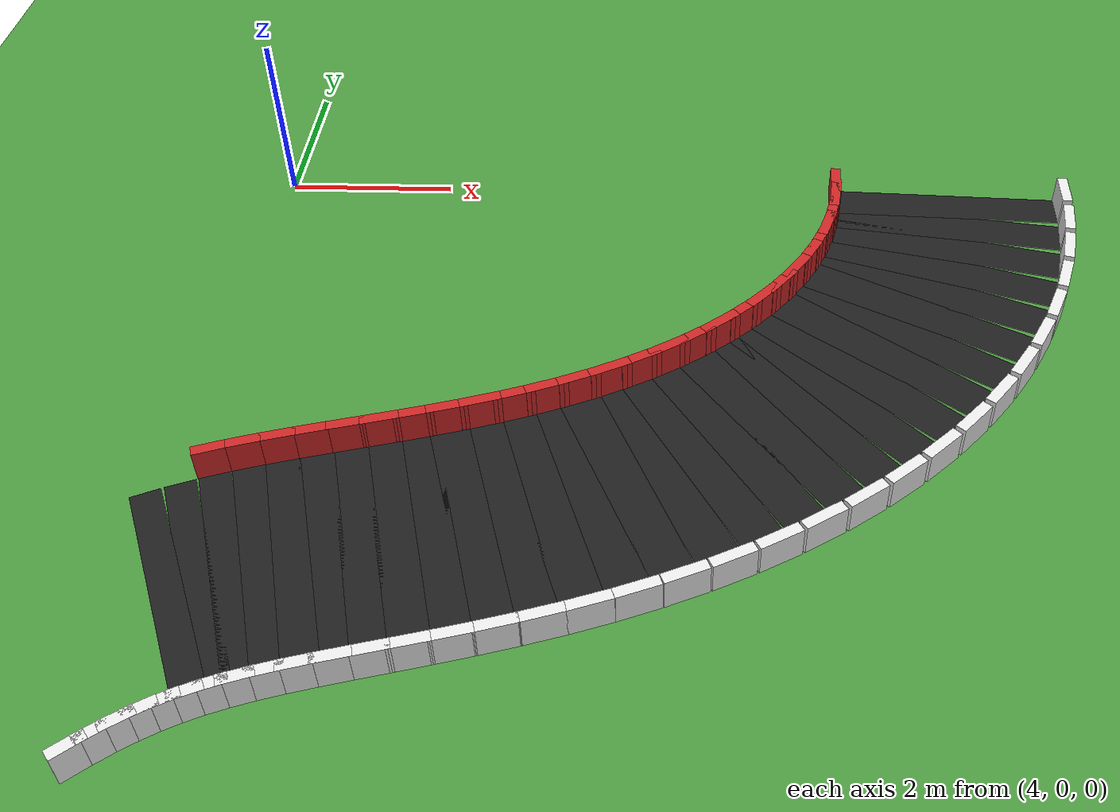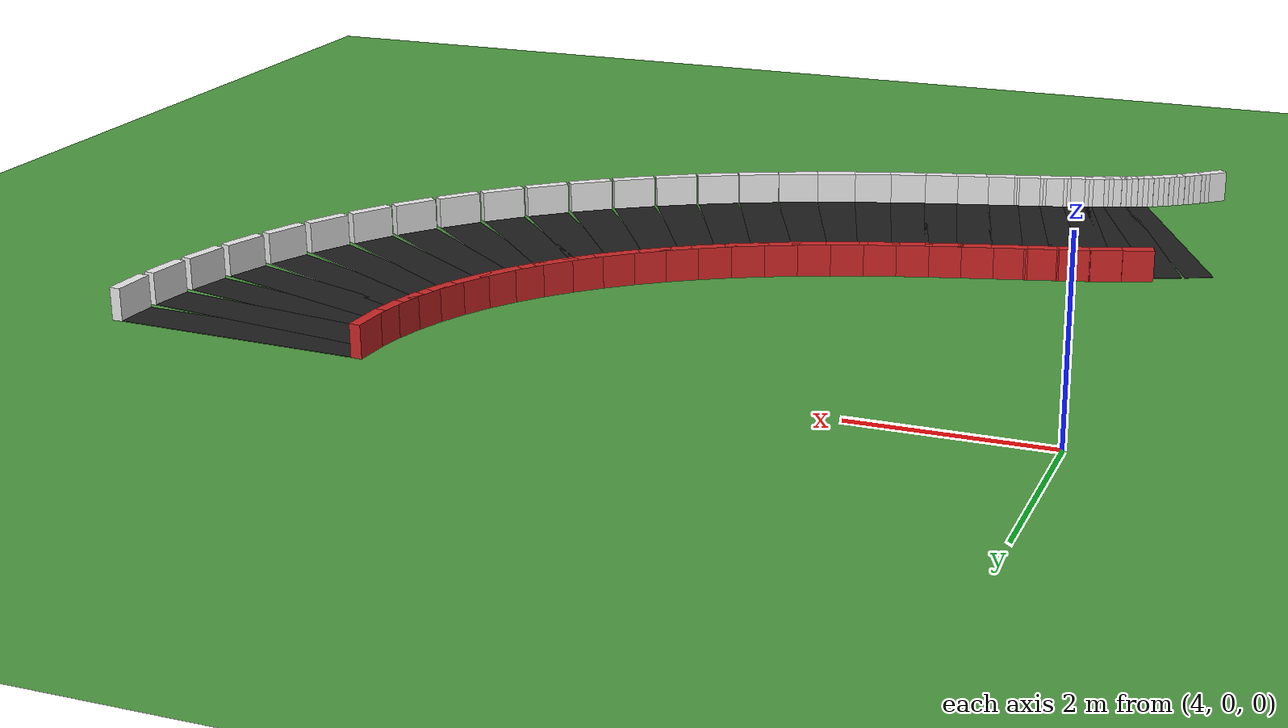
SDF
<sdf version="1.7">
 <world name="rl_track">
  <include><uri>model://sun</uri></include>
  <model name="ground">
   <static>true</static>
   <link name="link">
    <collision name="collision">
     <geometry><plane><normal>0 0 1</normal><size>40 40</size></plane></geometry>
    </collision>
    <visual name="visual">
     <geometry><plane><normal>0 0 1</normal><size>40 40</size></plane></geometry>
     <material>
      <script><uri>file://media/materials/scripts/gazebo.material</uri><name>Gazebo/Grass</name></script>
     </material>
    </visual>
   </link>
  </model>
  <model name="track">
   <static>true</static>
   <link name="inner_wall_146">
    <pose>3.983343 -8.303169 0.175000 0 0 0.706217119</pose>
    <collision name="collision">
     <geometry><box><size>0.337451 0.120000 0.350000</size></box></geometry>
     <surface><contact><ode><kp>1000000</kp><kd>10</kd></ode></contact></surface>
    </collision>
    <visual name="visual">
     <geometry><box><size>0.337451 0.120000 0.350000</size></box></geometry>
     <material>
      <script><uri>file://media/materials/scripts/gazebo.material</uri><name>Gazebo/White</name></script>
     </material>
    </visual>
   </link>
   <link name="inner_wall_147">
    <pose>4.154080 -8.163839 0.175000 0 0 0.661806062</pose>
    <collision name="collision">
     <geometry><box><size>0.328662 0.120000 0.350000</size></box></geometry>
     <surface><contact><ode><kp>1000000</kp><kd>10</kd></ode></contact></surface>
    </collision>
    <visual name="visual">
     <geometry><box><size>0.328662 0.120000 0.350000</size></box></geometry>
     <material>
      <script><uri>file://media/materials/scripts/gazebo.material</uri><name>Gazebo/White</name></script>
     </material>
    </visual>
   </link>
   <link name="inner_wall_148">
    <pose>4.316770 -8.043657 0.175000 0 0 0.609877483</pose>
    <collision name="collision">
     <geometry><box><size>0.322479 0.120000 0.350000</size></box></geometry>
     <surface><contact><ode><kp>1000000</kp><kd>10</kd></ode></contact></surface>
    </collision>
    <visual name="visual">
     <geometry><box><size>0.322479 0.120000 0.350000</size></box></geometry>
     <material>
      <script><uri>file://media/materials/scripts/gazebo.material</uri><name>Gazebo/White</name></script>
     </material>
    </visual>
   </link>
   <link name="inner_wall_149">
    <pose>4.475949 -7.938992 0.175000 0 0 0.552945236</pose>
    <collision name="collision">
     <geometry><box><size>0.319282 0.120000 0.350000</size></box></geometry>
     <surface><contact><ode><kp>1000000</kp><kd>10</kd></ode></contact></surface>
    </collision>
    <visual name="visual">
     <geometry><box><size>0.319282 0.120000 0.350000</size></box></geometry>
     <material>
      <script><uri>file://media/materials/scripts/gazebo.material</uri><name>Gazebo/White</name></script>
     </material>
    </visual>
   </link>
   <link name="inner_wall_150">
    <pose>4.637394 -7.845782 0.175000 0 0 0.494252315</pose>
    <collision name="collision">
     <geometry><box><size>0.319282 0.120000 0.350000</size></box></geometry>
     <surface><contact><ode><kp>1000000</kp><kd>10</kd></ode></contact></surface>
    </collision>
    <visual name="visual">
     <geometry><box><size>0.319282 0.120000 0.350000</size></box></geometry>
     <material>
      <script><uri>file://media/materials/scripts/gazebo.material</uri><name>Gazebo/White</name></script>
     </material>
    </visual>
   </link>
   <link name="road_151">
    <pose>4.210473 -6.482956 0.003000 0 0 0.437320068</pose>
    <visual name="visual">
     <geometry><box><size>0.312479 2.700000 0.006000</size></box></geometry>
     <material>
      <script><uri>file://media/materials/scripts/gazebo.material</uri><name>Gazebo/Black</name></script>
     </material>
    </visual>
   </link>
   <link name="inner_wall_151">
    <pose>4.807627 -7.760261 0.175000 0 0 0.437320068</pose>
    <collision name="collision">
     <geometry><box><size>0.322479 0.120000 0.350000</size></box></geometry>
     <surface><contact><ode><kp>1000000</kp><kd>10</kd></ode></contact></surface>
    </collision>
    <visual name="visual">
     <geometry><box><size>0.322479 0.120000 0.350000</size></box></geometry>
     <material>
      <script><uri>file://media/materials/scripts/gazebo.material</uri><name>Gazebo/White</name></script>
     </material>
    </visual>
   </link>
   <link name="road_152">
    <pose>4.463002 -6.372880 0.003000 0 0 0.385391489</pose>
    <visual name="visual">
     <geometry><box><size>0.318662 2.700000 0.006000</size></box></geometry>
     <material>
      <script><uri>file://media/materials/scripts/gazebo.material</uri><name>Gazebo/Black</name></script>
     </material>
    </visual>
   </link>
   <link name="inner_wall_152">
    <pose>4.993052 -7.679458 0.175000 0 0 0.385391489</pose>
    <collision name="collision">
     <geometry><box><size>0.328662 0.120000 0.350000</size></box></geometry>
     <surface><contact><ode><kp>1000000</kp><kd>10</kd></ode></contact></surface>
    </collision>
    <visual name="visual">
     <geometry><box><size>0.328662 0.120000 0.350000</size></box></geometry>
     <material>
      <script><uri>file://media/materials/scripts/gazebo.material</uri><name>Gazebo/White</name></script>
     </material>
    </visual>
   </link>
   <link name="road_153">
    <pose>4.727564 -6.272439 0.003000 0 0 0.340980432</pose>
    <visual name="visual">
     <geometry><box><size>0.327451 2.700000 0.006000</size></box></geometry>
     <material>
      <script><uri>file://media/materials/scripts/gazebo.material</uri><name>Gazebo/Black</name></script>
     </material>
    </visual>
   </link>
   <link name="inner_wall_153">
    <pose>5.199084 -7.601261 0.175000 0 0 0.340980432</pose>
    <collision name="collision">
     <geometry><box><size>0.337451 0.120000 0.350000</size></box></geometry>
     <surface><contact><ode><kp>1000000</kp><kd>10</kd></ode></contact></surface>
    </collision>
    <visual name="visual">
     <geometry><box><size>0.337451 0.120000 0.350000</size></box></geometry>
     <material>
      <script><uri>file://media/materials/scripts/gazebo.material</uri><name>Gazebo/White</name></script>
     </material>
    </visual>
   </link>
   <link name="outer_wall_153">
    <pose>4.256044 -4.943616 0.175000 0 0 0.340980432</pose>
    <collision name="collision">
     <geometry><box><size>0.337451 0.120000 0.350000</size></box></geometry>
     <surface><contact><ode><kp>1000000</kp><kd>10</kd></ode></contact></surface>
    </collision>
    <visual name="visual">
     <geometry><box><size>0.337451 0.120000 0.350000</size></box></geometry>
     <material>
      <script><uri>file://media/materials/scripts/gazebo.material</uri><name>Gazebo/Red</name></script>
     </material>
    </visual>
   </link>
   <link name="road_154">
    <pose>5.005275 -6.179484 0.003000 0 0 0.305669813</pose>
    <visual name="visual">
     <geometry><box><size>0.338349 2.700000 0.006000</size></box></geometry>
     <material>
      <script><uri>file://media/materials/scripts/gazebo.material</uri><name>Gazebo/Black</name></script>
     </material>
    </visual>
   </link>
   <link name="inner_wall_154">
    <pose>5.429589 -7.524124 0.175000 0 0 0.305669813</pose>
    <collision name="collision">
     <geometry><box><size>0.348349 0.120000 0.350000</size></box></geometry>
     <surface><contact><ode><kp>1000000</kp><kd>10</kd></ode></contact></surface>
    </collision>
    <visual name="visual">
     <geometry><box><size>0.348349 0.120000 0.350000</size></box></geometry>
     <material>
      <script><uri>file://media/materials/scripts/gazebo.material</uri><name>Gazebo/White</name></script>
     </material>
    </visual>
   </link>
   <link name="outer_wall_154">
    <pose>4.580960 -4.834843 0.175000 0 0 0.305669813</pose>
    <collision name="collision">
     <geometry><box><size>0.348349 0.120000 0.350000</size></box></geometry>
     <surface><contact><ode><kp>1000000</kp><kd>10</kd></ode></contact></surface>
    </collision>
    <visual name="visual">
     <geometry><box><size>0.348349 0.120000 0.350000</size></box></geometry>
     <material>
      <script><uri>file://media/materials/scripts/gazebo.material</uri><name>Gazebo/Red</name></script>
     </material>
    </visual>
   </link>
   <link name="road_155">
    <pose>5.296881 -6.091621 0.003000 0 0 0.280160323</pose>
    <visual name="visual">
     <geometry><box><size>0.350813 2.700000 0.006000</size></box></geometry>
     <material>
      <script><uri>file://media/materials/scripts/gazebo.material</uri><name>Gazebo/Black</name></script>
     </material>
    </visual>
   </link>
   <link name="inner_wall_155">
    <pose>5.686760 -7.446647 0.175000 0 0 0.280160323</pose>
    <collision name="collision">
     <geometry><box><size>0.360813 0.120000 0.350000</size></box></geometry>
     <surface><contact><ode><kp>1000000</kp><kd>10</kd></ode></contact></surface>
    </collision>
    <visual name="visual">
     <geometry><box><size>0.360813 0.120000 0.350000</size></box></geometry>
     <material>
      <script><uri>file://media/materials/scripts/gazebo.material</uri><name>Gazebo/White</name></script>
     </material>
    </visual>
   </link>
   <link name="outer_wall_155">
    <pose>4.907003 -4.736595 0.175000 0 0 0.280160323</pose>
    <collision name="collision">
     <geometry><box><size>0.360813 0.120000 0.350000</size></box></geometry>
     <surface><contact><ode><kp>1000000</kp><kd>10</kd></ode></contact></surface>
    </collision>
    <visual name="visual">
     <geometry><box><size>0.360813 0.120000 0.350000</size></box></geometry>
     <material>
      <script><uri>file://media/materials/scripts/gazebo.material</uri><name>Gazebo/Red</name></script>
     </material>
    </visual>
   </link>
   <link name="road_156">
    <pose>5.602740 -6.006264 0.003000 0 0 0.264471185</pose>
    <visual name="visual">
     <geometry><box><size>0.364298 2.700000 0.006000</size></box></geometry>
     <material>
      <script><uri>file://media/materials/scripts/gazebo.material</uri><name>Gazebo/Black</name></script>
     </material>
    </visual>
   </link>
   <link name="inner_wall_156">
    <pose>5.971312 -7.367240 0.175000 0 0 0.264471185</pose>
    <collision name="collision">
     <geometry><box><size>0.374298 0.120000 0.350000</size></box></geometry>
     <surface><contact><ode><kp>1000000</kp><kd>10</kd></ode></contact></surface>
    </collision>
    <visual name="visual">
     <geometry><box><size>0.374298 0.120000 0.350000</size></box></geometry>
     <material>
      <script><uri>file://media/materials/scripts/gazebo.material</uri><name>Gazebo/White</name></script>
     </material>
    </visual>
   </link>
   <link name="outer_wall_156">
    <pose>5.234167 -4.645289 0.175000 0 0 0.264471185</pose>
    <collision name="collision">
     <geometry><box><size>0.374298 0.120000 0.350000</size></box></geometry>
     <surface><contact><ode><kp>1000000</kp><kd>10</kd></ode></contact></surface>
    </collision>
    <visual name="visual">
     <geometry><box><size>0.374298 0.120000 0.350000</size></box></geometry>
     <material>
      <script><uri>file://media/materials/scripts/gazebo.material</uri><name>Gazebo/Red</name></script>
     </material>
    </visual>
   </link>
   <link name="road_157">
    <pose>5.922792 -5.920691 0.003000 0 0 0.258181025</pose>
    <visual name="visual">
     <geometry><box><size>0.378296 2.700000 0.006000</size></box></geometry>
     <material>
      <script><uri>file://media/materials/scripts/gazebo.material</uri><name>Gazebo/Black</name></script>
     </material>
    </visual>
   </link>
   <link name="inner_wall_157">
    <pose>6.282797 -7.283958 0.175000 0 0 0.258181025</pose>
    <collision name="collision">
     <geometry><box><size>0.388296 0.120000 0.350000</size></box></geometry>
     <surface><contact><ode><kp>1000000</kp><kd>10</kd></ode></contact></surface>
    </collision>
    <visual name="visual">
     <geometry><box><size>0.388296 0.120000 0.350000</size></box></geometry>
     <material>
      <script><uri>file://media/materials/scripts/gazebo.material</uri><name>Gazebo/White</name></script>
     </material>
    </visual>
   </link>
   <link name="outer_wall_157">
    <pose>5.562788 -4.557424 0.175000 0 0 0.258181025</pose>
    <collision name="collision">
     <geometry><box><size>0.388296 0.120000 0.350000</size></box></geometry>
     <surface><contact><ode><kp>1000000</kp><kd>10</kd></ode></contact></surface>
    </collision>
    <visual name="visual">
     <geometry><box><size>0.388296 0.120000 0.350000</size></box></geometry>
     <material>
      <script><uri>file://media/materials/scripts/gazebo.material</uri><name>Gazebo/Red</name></script>
     </material>
    </visual>
   </link>
   <link name="road_158">
    <pose>6.256560 -5.832104 0.003000 0 0 0.260636785</pose>
    <visual name="visual">
     <geometry><box><size>0.392353 2.700000 0.006000</size></box></geometry>
     <material>
      <script><uri>file://media/materials/scripts/gazebo.material</uri><name>Gazebo/Black</name></script>
     </material>
    </visual>
   </link>
   <link name="inner_wall_158">
    <pose>6.619911 -7.194483 0.175000 0 0 0.260636785</pose>
    <collision name="collision">
     <geometry><box><size>0.402353 0.120000 0.350000</size></box></geometry>
     <surface><contact><ode><kp>1000000</kp><kd>10</kd></ode></contact></surface>
    </collision>
    <visual name="visual">
     <geometry><box><size>0.402353 0.120000 0.350000</size></box></geometry>
     <material>
      <script><uri>file://media/materials/scripts/gazebo.material</uri><name>Gazebo/White</name></script>
     </material>
    </visual>
   </link>
   <link name="outer_wall_158">
    <pose>5.893209 -4.469725 0.175000 0 0 0.260636785</pose>
    <collision name="collision">
     <geometry><box><size>0.402353 0.120000 0.350000</size></box></geometry>
     <surface><contact><ode><kp>1000000</kp><kd>10</kd></ode></contact></surface>
    </collision>
    <visual name="visual">
     <geometry><box><size>0.402353 0.120000 0.350000</size></box></geometry>
     <material>
      <script><uri>file://media/materials/scripts/gazebo.material</uri><name>Gazebo/Red</name></script>
     </material>
    </visual>
   </link>
   <link name="road_159">
    <pose>6.603140 -5.737687 0.003000 0 0 0.271104231</pose>
    <visual name="visual">
     <geometry><box><size>0.406078 2.700000 0.006000</size></box></geometry>
     <material>
      <script><uri>file://media/materials/scripts/gazebo.material</uri><name>Gazebo/Black</name></script>
     </material>
    </visual>
   </link>
   <link name="inner_wall_159">
    <pose>6.980731 -7.096188 0.175000 0 0 0.271104231</pose>
    <collision name="collision">
     <geometry><box><size>0.416078 0.120000 0.350000</size></box></geometry>
     <surface><contact><ode><kp>1000000</kp><kd>10</kd></ode></contact></surface>
    </collision>
    <visual name="visual">
     <geometry><box><size>0.416078 0.120000 0.350000</size></box></geometry>
     <material>
      <script><uri>file://media/materials/scripts/gazebo.material</uri><name>Gazebo/White</name></script>
     </material>
    </visual>
   </link>
   <link name="outer_wall_159">
    <pose>6.225548 -4.379186 0.175000 0 0 0.271104231</pose>
    <collision name="collision">
     <geometry><box><size>0.416078 0.120000 0.350000</size></box></geometry>
     <surface><contact><ode><kp>1000000</kp><kd>10</kd></ode></contact></surface>
    </collision>
    <visual name="visual">
     <geometry><box><size>0.416078 0.120000 0.350000</size></box></geometry>
     <material>
      <script><uri>file://media/materials/scripts/gazebo.material</uri><name>Gazebo/Red</name></script>
     </material>
    </visual>
   </link>
   <link name="road_160">
    <pose>6.961211 -5.634669 0.003000 0 0 0.288862243</pose>
    <visual name="visual">
     <geometry><box><size>0.419143 2.700000 0.006000</size></box></geometry>
     <material>
      <script><uri>file://media/materials/scripts/gazebo.material</uri><name>Gazebo/Black</name></script>
     </material>
    </visual>
   </link>
   <link name="inner_wall_160">
    <pose>7.362866 -6.986250 0.175000 0 0 0.288862243</pose>
    <collision name="collision">
     <geometry><box><size>0.429143 0.120000 0.350000</size></box></geometry>
     <surface><contact><ode><kp>1000000</kp><kd>10</kd></ode></contact></surface>
    </collision>
    <visual name="visual">
     <geometry><box><size>0.429143 0.120000 0.350000</size></box></geometry>
     <material>
      <script><uri>file://media/materials/scripts/gazebo.material</uri><name>Gazebo/White</name></script>
     </material>
    </visual>
   </link>
   <link name="outer_wall_160">
    <pose>6.559556 -4.283087 0.175000 0 0 0.288862243</pose>
    <collision name="collision">
     <geometry><box><size>0.429143 0.120000 0.350000</size></box></geometry>
     <surface><contact><ode><kp>1000000</kp><kd>10</kd></ode></contact></surface>
    </collision>
    <visual name="visual">
     <geometry><box><size>0.429143 0.120000 0.350000</size></box></geometry>
     <material>
      <script><uri>file://media/materials/scripts/gazebo.material</uri><name>Gazebo/Red</name></script>
     </material>
    </visual>
   </link>
   <link name="road_161">
    <pose>7.329049 -5.520379 0.003000 0 0 0.313254232</pose>
    <visual name="visual">
     <geometry><box><size>0.431283 2.700000 0.006000</size></box></geometry>
     <material>
      <script><uri>file://media/materials/scripts/gazebo.material</uri><name>Gazebo/Black</name></script>
     </material>
    </visual>
   </link>
   <link name="inner_wall_161">
    <pose>7.763549 -6.861762 0.175000 0 0 0.313254232</pose>
    <collision name="collision">
     <geometry><box><size>0.441283 0.120000 0.350000</size></box></geometry>
     <surface><contact><ode><kp>1000000</kp><kd>10</kd></ode></contact></surface>
    </collision>
    <visual name="visual">
     <geometry><box><size>0.441283 0.120000 0.350000</size></box></geometry>
     <material>
      <script><uri>file://media/materials/scripts/gazebo.material</uri><name>Gazebo/White</name></script>
     </material>
    </visual>
   </link>
   <link name="outer_wall_161">
    <pose>6.894549 -4.178995 0.175000 0 0 0.313254232</pose>
    <collision name="collision">
     <geometry><box><size>0.441283 0.120000 0.350000</size></box></geometry>
     <surface><contact><ode><kp>1000000</kp><kd>10</kd></ode></contact></surface>
    </collision>
    <visual name="visual">
     <geometry><box><size>0.441283 0.120000 0.350000</size></box></geometry>
     <material>
      <script><uri>file://media/materials/scripts/gazebo.material</uri><name>Gazebo/Red</name></script>
     </material>
    </visual>
   </link>
   <link name="road_162">
    <pose>7.704551 -5.392308 0.003000 0 0 0.343710974</pose>
    <visual name="visual">
     <geometry><box><size>0.442292 2.700000 0.006000</size></box></geometry>
     <material>
      <script><uri>file://media/materials/scripts/gazebo.material</uri><name>Gazebo/Black</name></script>
     </material>
    </visual>
   </link>
   <link name="inner_wall_162">
    <pose>8.179698 -6.719838 0.175000 0 0 0.343710974</pose>
    <collision name="collision">
     <geometry><box><size>0.452292 0.120000 0.350000</size></box></geometry>
     <surface><contact><ode><kp>1000000</kp><kd>10</kd></ode></contact></surface>
    </collision>
    <visual name="visual">
     <geometry><box><size>0.452292 0.120000 0.350000</size></box></geometry>
     <material>
      <script><uri>file://media/materials/scripts/gazebo.material</uri><name>Gazebo/White</name></script>
     </material>
    </visual>
   </link>
   <link name="outer_wall_162">
    <pose>7.229405 -4.064778 0.175000 0 0 0.343710974</pose>
    <collision name="collision">
     <geometry><box><size>0.452292 0.120000 0.350000</size></box></geometry>
     <surface><contact><ode><kp>1000000</kp><kd>10</kd></ode></contact></surface>
    </collision>
    <visual name="visual">
     <geometry><box><size>0.452292 0.120000 0.350000</size></box></geometry>
     <material>
      <script><uri>file://media/materials/scripts/gazebo.material</uri><name>Gazebo/Red</name></script>
     </material>
    </visual>
   </link>
   <link name="road_163">
    <pose>8.085265 -5.248158 0.003000 0 0 0.379756089</pose>
    <visual name="visual">
     <geometry><box><size>0.452019 2.700000 0.006000</size></box></geometry>
     <material>
      <script><uri>file://media/materials/scripts/gazebo.material</uri><name>Gazebo/Black</name></script>
     </material>
    </visual>
   </link>
   <link name="inner_wall_163">
    <pose>8.607943 -6.557703 0.175000 0 0 0.379756089</pose>
    <collision name="collision">
     <geometry><box><size>0.462019 0.120000 0.350000</size></box></geometry>
     <surface><contact><ode><kp>1000000</kp><kd>10</kd></ode></contact></surface>
    </collision>
    <visual name="visual">
     <geometry><box><size>0.462019 0.120000 0.350000</size></box></geometry>
     <material>
      <script><uri>file://media/materials/scripts/gazebo.material</uri><name>Gazebo/White</name></script>
     </material>
    </visual>
   </link>
   <link name="outer_wall_163">
    <pose>7.562586 -3.938614 0.175000 0 0 0.379756089</pose>
    <collision name="collision">
     <geometry><box><size>0.462019 0.120000 0.350000</size></box></geometry>
     <surface><contact><ode><kp>1000000</kp><kd>10</kd></ode></contact></surface>
    </collision>
    <visual name="visual">
     <geometry><box><size>0.462019 0.120000 0.350000</size></box></geometry>
     <material>
      <script><uri>file://media/materials/scripts/gazebo.material</uri><name>Gazebo/Red</name></script>
     </material>
    </visual>
   </link>
   <link name="road_164">
    <pose>8.468426 -5.085896 0.003000 0 0 0.421001777</pose>
    <visual name="visual">
     <geometry><box><size>0.460363 2.700000 0.006000</size></box></geometry>
     <material>
      <script><uri>file://media/materials/scripts/gazebo.material</uri><name>Gazebo/Black</name></script>
     </material>
    </visual>
   </link>
   <link name="inner_wall_164">
    <pose>9.044657 -6.372775 0.175000 0 0 0.421001777</pose>
    <collision name="collision">
     <geometry><box><size>0.470363 0.120000 0.350000</size></box></geometry>
     <surface><contact><ode><kp>1000000</kp><kd>10</kd></ode></contact></surface>
    </collision>
    <visual name="visual">
     <geometry><box><size>0.470363 0.120000 0.350000</size></box></geometry>
     <material>
      <script><uri>file://media/materials/scripts/gazebo.material</uri><name>Gazebo/White</name></script>
     </material>
    </visual>
   </link>
   <link name="outer_wall_164">
    <pose>7.892194 -3.799017 0.175000 0 0 0.421001777</pose>
    <collision name="collision">
     <geometry><box><size>0.470363 0.120000 0.350000</size></box></geometry>
     <surface><contact><ode><kp>1000000</kp><kd>10</kd></ode></contact></surface>
    </collision>
    <visual name="visual">
     <geometry><box><size>0.470363 0.120000 0.350000</size></box></geometry>
     <material>
      <script><uri>file://media/materials/scripts/gazebo.material</uri><name>Gazebo/Red</name></script>
     </material>
    </visual>
   </link>
   <link name="road_165">
    <pose>8.851002 -4.903792 0.003000 0 0 0.467139450</pose>
    <visual name="visual">
     <geometry><box><size>0.467274 2.700000 0.006000</size></box></geometry>
     <material>
      <script><uri>file://media/materials/scripts/gazebo.material</uri><name>Gazebo/Black</name></script>
     </material>
    </visual>
   </link>
   <link name="inner_wall_165">
    <pose>9.485973 -6.162725 0.175000 0 0 0.467139450</pose>
    <collision name="collision">
     <geometry><box><size>0.477274 0.120000 0.350000</size></box></geometry>
     <surface><contact><ode><kp>1000000</kp><kd>10</kd></ode></contact></surface>
    </collision>
    <visual name="visual">
     <geometry><box><size>0.477274 0.120000 0.350000</size></box></geometry>
     <material>
      <script><uri>file://media/materials/scripts/gazebo.material</uri><name>Gazebo/White</name></script>
     </material>
    </visual>
   </link>
   <link name="outer_wall_165">
    <pose>8.216031 -3.644859 0.175000 0 0 0.467139450</pose>
    <collision name="collision">
     <geometry><box><size>0.477274 0.120000 0.350000</size></box></geometry>
     <surface><contact><ode><kp>1000000</kp><kd>10</kd></ode></contact></surface>
    </collision>
    <visual name="visual">
     <geometry><box><size>0.477274 0.120000 0.350000</size></box></geometry>
     <material>
      <script><uri>file://media/materials/scripts/gazebo.material</uri><name>Gazebo/Red</name></script>
     </material>
    </visual>
   </link>
   <link name="road_166">
    <pose>9.229746 -4.700462 0.003000 0 0 0.517927822</pose>
    <visual name="visual">
     <geometry><box><size>0.472747 2.700000 0.006000</size></box></geometry>
     <material>
      <script><uri>file://media/materials/scripts/gazebo.material</uri><name>Gazebo/Black</name></script>
     </material>
    </visual>
   </link>
   <link name="inner_wall_166">
    <pose>9.927810 -5.925536 0.175000 0 0 0.517927822</pose>
    <collision name="collision">
     <geometry><box><size>0.482747 0.120000 0.350000</size></box></geometry>
     <surface><contact><ode><kp>1000000</kp><kd>10</kd></ode></contact></surface>
    </collision>
    <visual name="visual">
     <geometry><box><size>0.482747 0.120000 0.350000</size></box></geometry>
     <material>
      <script><uri>file://media/materials/scripts/gazebo.material</uri><name>Gazebo/White</name></script>
     </material>
    </visual>
   </link>
   <link name="outer_wall_166">
    <pose>8.531682 -3.475387 0.175000 0 0 0.517927822</pose>
    <collision name="collision">
     <geometry><box><size>0.482747 0.120000 0.350000</size></box></geometry>
     <surface><contact><ode><kp>1000000</kp><kd>10</kd></ode></contact></surface>
    </collision>
    <visual name="visual">
     <geometry><box><size>0.482747 0.120000 0.350000</size></box></geometry>
     <material>
      <script><uri>file://media/materials/scripts/gazebo.material</uri><name>Gazebo/Red</name></script>
     </material>
    </visual>
   </link>
   <link name="road_167">
    <pose>9.601244 -4.474895 0.003000 0 0 0.573179712</pose>
    <visual name="visual">
     <geometry><box><size>0.476818 2.700000 0.006000</size></box></geometry>
     <material>
      <script><uri>file://media/materials/scripts/gazebo.material</uri><name>Gazebo/Black</name></script>
     </material>
    </visual>
   </link>
   <link name="inner_wall_167">
    <pose>10.365896 -5.659550 0.175000 0 0 0.573179712</pose>
    <collision name="collision">
     <geometry><box><size>0.486818 0.120000 0.350000</size></box></geometry>
     <surface><contact><ode><kp>1000000</kp><kd>10</kd></ode></contact></surface>
    </collision>
    <visual name="visual">
     <geometry><box><size>0.486818 0.120000 0.350000</size></box></geometry>
     <material>
      <script><uri>file://media/materials/scripts/gazebo.material</uri><name>Gazebo/White</name></script>
     </material>
    </visual>
   </link>
   <link name="outer_wall_167">
    <pose>8.836592 -3.290240 0.175000 0 0 0.573179712</pose>
    <collision name="collision">
     <geometry><box><size>0.486818 0.120000 0.350000</size></box></geometry>
     <surface><contact><ode><kp>1000000</kp><kd>10</kd></ode></contact></surface>
    </collision>
    <visual name="visual">
     <geometry><box><size>0.486818 0.120000 0.350000</size></box></geometry>
     <material>
      <script><uri>file://media/materials/scripts/gazebo.material</uri><name>Gazebo/Red</name></script>
     </material>
    </visual>
   </link>
   <link name="road_168">
    <pose>9.961980 -4.226479 0.003000 0 0 0.632748024</pose>
    <visual name="visual">
     <geometry><box><size>0.479564 2.700000 0.006000</size></box></geometry>
     <material>
      <script><uri>file://media/materials/scripts/gazebo.material</uri><name>Gazebo/Black</name></script>
     </material>
    </visual>
   </link>
   <link name="inner_wall_168">
    <pose>10.795802 -5.363511 0.175000 0 0 0.632748024</pose>
    <collision name="collision">
     <geometry><box><size>0.489564 0.120000 0.350000</size></box></geometry>
     <surface><contact><ode><kp>1000000</kp><kd>10</kd></ode></contact></surface>
    </collision>
    <visual name="visual">
     <geometry><box><size>0.489564 0.120000 0.350000</size></box></geometry>
     <material>
      <script><uri>file://media/materials/scripts/gazebo.material</uri><name>Gazebo/White</name></script>
     </material>
    </visual>
   </link>
   <link name="outer_wall_168">
    <pose>9.128159 -3.089447 0.175000 0 0 0.632748024</pose>
    <collision name="collision">
     <geometry><box><size>0.489564 0.120000 0.350000</size></box></geometry>
     <surface><contact><ode><kp>1000000</kp><kd>10</kd></ode></contact></surface>
    </collision>
    <visual name="visual">
     <geometry><box><size>0.489564 0.120000 0.350000</size></box></geometry>
     <material>
      <script><uri>file://media/materials/scripts/gazebo.material</uri><name>Gazebo/Red</name></script>
     </material>
    </visual>
   </link>
   <link name="road_169">
    <pose>10.308393 -3.955016 0.003000 0 0 0.696510964</pose>
    <visual name="visual">
     <geometry><box><size>0.481097 2.700000 0.006000</size></box></geometry>
     <material>
      <script><uri>file://media/materials/scripts/gazebo.material</uri><name>Gazebo/Black</name></script>
     </material>
    </visual>
   </link>
   <link name="inner_wall_169">
    <pose>11.212972 -5.036607 0.175000 0 0 0.696510964</pose>
    <collision name="collision">
     <geometry><box><size>0.491097 0.120000 0.350000</size></box></geometry>
     <surface><contact><ode><kp>1000000</kp><kd>10</kd></ode></contact></surface>
    </collision>
    <visual name="visual">
     <geometry><box><size>0.491097 0.120000 0.350000</size></box></geometry>
     <material>
      <script><uri>file://media/materials/scripts/gazebo.material</uri><name>Gazebo/White</name></script>
     </material>
    </visual>
   </link>
   <link name="outer_wall_169">
    <pose>9.403814 -2.873426 0.175000 0 0 0.696510964</pose>
    <collision name="collision">
     <geometry><box><size>0.491097 0.120000 0.350000</size></box></geometry>
     <surface><contact><ode><kp>1000000</kp><kd>10</kd></ode></contact></surface>
    </collision>
    <visual name="visual">
     <geometry><box><size>0.491097 0.120000 0.350000</size></box></geometry>
     <material>
      <script><uri>file://media/materials/scripts/gazebo.material</uri><name>Gazebo/Red</name></script>
     </material>
    </visual>
   </link>
   <link name="road_170">
    <pose>10.636938 -3.660728 0.003000 0 0 0.764356391</pose>
    <visual name="visual">
     <geometry><box><size>0.481562 2.700000 0.006000</size></box></geometry>
     <material>
      <script><uri>file://media/materials/scripts/gazebo.material</uri><name>Gazebo/Black</name></script>
     </material>
    </visual>
   </link>
   <link name="inner_wall_170">
    <pose>11.612761 -4.678506 0.175000 0 0 0.764356391</pose>
    <collision name="collision">
     <geometry><box><size>0.491562 0.120000 0.350000</size></box></geometry>
     <surface><contact><ode><kp>1000000</kp><kd>10</kd></ode></contact></surface>
    </collision>
    <visual name="visual">
     <geometry><box><size>0.491562 0.120000 0.350000</size></box></geometry>
     <material>
      <script><uri>file://media/materials/scripts/gazebo.material</uri><name>Gazebo/White</name></script>
     </material>
    </visual>
   </link>
   <link name="outer_wall_170">
    <pose>9.661116 -2.642951 0.175000 0 0 0.764356391</pose>
    <collision name="collision">
     <geometry><box><size>0.491562 0.120000 0.350000</size></box></geometry>
     <surface><contact><ode><kp>1000000</kp><kd>10</kd></ode></contact></surface>
    </collision>
    <visual name="visual">
     <geometry><box><size>0.491562 0.120000 0.350000</size></box></geometry>
     <material>
      <script><uri>file://media/materials/scripts/gazebo.material</uri><name>Gazebo/Red</name></script>
     </material>
    </visual>
   </link>
   <link name="road_171">
    <pose>10.944152 -3.344256 0.003000 0 0 0.836165265</pose>
    <visual name="visual">
     <geometry><box><size>0.481129 2.700000 0.006000</size></box></geometry>
     <material>
      <script><uri>file://media/materials/scripts/gazebo.material</uri><name>Gazebo/Black</name></script>
     </material>
    </visual>
   </link>
   <link name="inner_wall_171">
    <pose>11.990482 -4.289398 0.175000 0 0 0.836165265</pose>
    <collision name="collision">
     <geometry><box><size>0.491129 0.120000 0.350000</size></box></geometry>
     <surface><contact><ode><kp>1000000</kp><kd>10</kd></ode></contact></surface>
    </collision>
    <visual name="visual">
     <geometry><box><size>0.491129 0.120000 0.350000</size></box></geometry>
     <material>
      <script><uri>file://media/materials/scripts/gazebo.material</uri><name>Gazebo/White</name></script>
     </material>
    </visual>
   </link>
   <link name="outer_wall_171">
    <pose>9.897822 -2.399114 0.175000 0 0 0.836165265</pose>
    <collision name="collision">
     <geometry><box><size>0.491129 0.120000 0.350000</size></box></geometry>
     <surface><contact><ode><kp>1000000</kp><kd>10</kd></ode></contact></surface>
    </collision>
    <visual name="visual">
     <geometry><box><size>0.491129 0.120000 0.350000</size></box></geometry>
     <material>
      <script><uri>file://media/materials/scripts/gazebo.material</uri><name>Gazebo/Red</name></script>
     </material>
    </visual>
   </link>
   <link name="road_172">
    <pose>11.226709 -3.006650 0.003000 0 0 0.911794373</pose>
    <visual name="visual">
     <geometry><box><size>0.479992 2.700000 0.006000</size></box></geometry>
     <material>
      <script><uri>file://media/materials/scripts/gazebo.material</uri><name>Gazebo/Black</name></script>
     </material>
    </visual>
   </link>
   <link name="inner_wall_172">
    <pose>12.341460 -3.870032 0.175000 0 0 0.911794373</pose>
    <collision name="collision">
     <geometry><box><size>0.489992 0.120000 0.350000</size></box></geometry>
     <surface><contact><ode><kp>1000000</kp><kd>10</kd></ode></contact></surface>
    </collision>
    <visual name="visual">
     <geometry><box><size>0.489992 0.120000 0.350000</size></box></geometry>
     <material>
      <script><uri>file://media/materials/scripts/gazebo.material</uri><name>Gazebo/White</name></script>
     </material>
    </visual>
   </link>
   <link name="outer_wall_172">
    <pose>10.111958 -2.143267 0.175000 0 0 0.911794373</pose>
    <collision name="collision">
     <geometry><box><size>0.489992 0.120000 0.350000</size></box></geometry>
     <surface><contact><ode><kp>1000000</kp><kd>10</kd></ode></contact></surface>
    </collision>
    <visual name="visual">
     <geometry><box><size>0.489992 0.120000 0.350000</size></box></geometry>
     <material>
      <script><uri>file://media/materials/scripts/gazebo.material</uri><name>Gazebo/Red</name></script>
     </material>
    </visual>
   </link>
   <link name="road_173">
    <pose>11.481486 -2.649353 0.003000 0 0 0.991058897</pose>
    <visual name="visual">
     <geometry><box><size>0.478358 2.700000 0.006000</size></box></geometry>
     <material>
      <script><uri>file://media/materials/scripts/gazebo.material</uri><name>Gazebo/Black</name></script>
     </material>
    </visual>
   </link>
   <link name="inner_wall_173">
    <pose>12.661101 -3.421757 0.175000 0 0 0.991058897</pose>
    <collision name="collision">
     <geometry><box><size>0.488358 0.120000 0.350000</size></box></geometry>
     <surface><contact><ode><kp>1000000</kp><kd>10</kd></ode></contact></surface>
    </collision>
    <visual name="visual">
     <geometry><box><size>0.488358 0.120000 0.350000</size></box></geometry>
     <material>
      <script><uri>file://media/materials/scripts/gazebo.material</uri><name>Gazebo/White</name></script>
     </material>
    </visual>
   </link>
   <link name="outer_wall_173">
    <pose>10.301871 -1.876949 0.175000 0 0 0.991058897</pose>
    <collision name="collision">
     <geometry><box><size>0.488358 0.120000 0.350000</size></box></geometry>
     <surface><contact><ode><kp>1000000</kp><kd>10</kd></ode></contact></surface>
    </collision>
    <visual name="visual">
     <geometry><box><size>0.488358 0.120000 0.350000</size></box></geometry>
     <material>
      <script><uri>file://media/materials/scripts/gazebo.material</uri><name>Gazebo/Red</name></script>
     </material>
    </visual>
   </link>
   <link name="road_174">
    <pose>11.705614 -2.274175 0.003000 0 0 1.073715884</pose>
    <visual name="visual">
     <geometry><box><size>0.476441 2.700000 0.006000</size></box></geometry>
     <material>
      <script><uri>file://media/materials/scripts/gazebo.material</uri><name>Gazebo/Black</name></script>
     </material>
    </visual>
   </link>
   <link name="inner_wall_174">
    <pose>12.944974 -2.946550 0.175000 0 0 1.073715884</pose>
    <collision name="collision">
     <geometry><box><size>0.486441 0.120000 0.350000</size></box></geometry>
     <surface><contact><ode><kp>1000000</kp><kd>10</kd></ode></contact></surface>
    </collision>
    <visual name="visual">
     <geometry><box><size>0.486441 0.120000 0.350000</size></box></geometry>
     <material>
      <script><uri>file://media/materials/scripts/gazebo.material</uri><name>Gazebo/White</name></script>
     </material>
    </visual>
   </link>
   <link name="outer_wall_174">
    <pose>10.466255 -1.601801 0.175000 0 0 1.073715884</pose>
    <collision name="collision">
     <geometry><box><size>0.486441 0.120000 0.350000</size></box></geometry>
     <surface><contact><ode><kp>1000000</kp><kd>10</kd></ode></contact></surface>
    </collision>
    <visual name="visual">
     <geometry><box><size>0.486441 0.120000 0.350000</size></box></geometry>
     <material>
      <script><uri>file://media/materials/scripts/gazebo.material</uri><name>Gazebo/Red</name></script>
     </material>
    </visual>
   </link>
   <link name="road_175">
    <pose>11.896531 -1.883260 0.003000 0 0 1.159450211</pose>
    <visual name="visual">
     <geometry><box><size>0.474449 2.700000 0.006000</size></box></geometry>
     <material>
      <script><uri>file://media/materials/scripts/gazebo.material</uri><name>Gazebo/Black</name></script>
     </material>
    </visual>
   </link>
   <link name="inner_wall_175">
    <pose>13.188914 -2.447039 0.175000 0 0 1.159450211</pose>
    <collision name="collision">
     <geometry><box><size>0.484449 0.120000 0.350000</size></box></geometry>
     <surface><contact><ode><kp>1000000</kp><kd>10</kd></ode></contact></surface>
    </collision>
    <visual name="visual">
     <geometry><box><size>0.484449 0.120000 0.350000</size></box></geometry>
     <material>
      <script><uri>file://media/materials/scripts/gazebo.material</uri><name>Gazebo/White</name></script>
     </material>
    </visual>
   </link>
   <link name="outer_wall_175">
    <pose>10.604148 -1.319480 0.175000 0 0 1.159450211</pose>
    <collision name="collision">
     <geometry><box><size>0.484449 0.120000 0.350000</size></box></geometry>
     <surface><contact><ode><kp>1000000</kp><kd>10</kd></ode></contact></surface>
    </collision>
    <visual name="visual">
     <geometry><box><size>0.484449 0.120000 0.350000</size></box></geometry>
     <material>
      <script><uri>file://media/materials/scripts/gazebo.material</uri><name>Gazebo/Red</name></script>
     </material>
    </visual>
   </link>
   <link name="road_176">
    <pose>12.052026 -1.479044 0.003000 0 0 1.247865030</pose>
    <visual name="visual">
     <geometry><box><size>0.472582 2.700000 0.006000</size></box></geometry>
     <material>
      <script><uri>file://media/materials/scripts/gazebo.material</uri><name>Gazebo/Black</name></script>
     </material>
    </visual>
   </link>
   <link name="inner_wall_176">
    <pose>13.389143 -1.926505 0.175000 0 0 1.247865030</pose>
    <collision name="collision">
     <geometry><box><size>0.482582 0.120000 0.350000</size></box></geometry>
     <surface><contact><ode><kp>1000000</kp><kd>10</kd></ode></contact></surface>
    </collision>
    <visual name="visual">
     <geometry><box><size>0.482582 0.120000 0.350000</size></box></geometry>
     <material>
      <script><uri>file://media/materials/scripts/gazebo.material</uri><name>Gazebo/White</name></script>
     </material>
    </visual>
   </link>
   <link name="outer_wall_176">
    <pose>10.714910 -1.031584 0.175000 0 0 1.247865030</pose>
    <collision name="collision">
     <geometry><box><size>0.482582 0.120000 0.350000</size></box></geometry>
     <surface><contact><ode><kp>1000000</kp><kd>10</kd></ode></contact></surface>
    </collision>
    <visual name="visual">
     <geometry><box><size>0.482582 0.120000 0.350000</size></box></geometry>
     <material>
      <script><uri>file://media/materials/scripts/gazebo.material</uri><name>Gazebo/Red</name></script>
     </material>
    </visual>
   </link>
   <link name="road_177">
    <pose>12.170283 -1.064216 0.003000 0 0 1.338478777</pose>
    <visual name="visual">
     <geometry><box><size>0.471014 2.700000 0.006000</size></box></geometry>
     <material>
      <script><uri>file://media/materials/scripts/gazebo.material</uri><name>Gazebo/Black</name></script>
     </material>
    </visual>
   </link>
   <link name="inner_wall_177">
    <pose>13.542404 -1.388845 0.175000 0 0 1.338478777</pose>
    <collision name="collision">
     <geometry><box><size>0.481014 0.120000 0.350000</size></box></geometry>
     <surface><contact><ode><kp>1000000</kp><kd>10</kd></ode></contact></surface>
    </collision>
    <visual name="visual">
     <geometry><box><size>0.481014 0.120000 0.350000</size></box></geometry>
     <material>
      <script><uri>file://media/materials/scripts/gazebo.material</uri><name>Gazebo/White</name></script>
     </material>
    </visual>
   </link>
   <link name="outer_wall_177">
    <pose>10.798162 -0.739587 0.175000 0 0 1.338478777</pose>
    <collision name="collision">
     <geometry><box><size>0.481014 0.120000 0.350000</size></box></geometry>
     <surface><contact><ode><kp>1000000</kp><kd>10</kd></ode></contact></surface>
    </collision>
    <visual name="visual">
     <geometry><box><size>0.481014 0.120000 0.350000</size></box></geometry>
     <material>
      <script><uri>file://media/materials/scripts/gazebo.material</uri><name>Gazebo/Red</name></script>
     </material>
    </visual>
   </link>
   <link name="road_178">
    <pose>12.249907 -0.641661 0.003000 0 0 1.430730421</pose>
    <visual name="visual">
     <geometry><box><size>0.469884 2.700000 0.006000</size></box></geometry>
     <material>
      <script><uri>file://media/materials/scripts/gazebo.material</uri><name>Gazebo/Black</name></script>
     </material>
    </visual>
   </link>
   <link name="inner_wall_178">
    <pose>13.646099 -0.838509 0.175000 0 0 1.430730421</pose>
    <collision name="collision">
     <geometry><box><size>0.479884 0.120000 0.350000</size></box></geometry>
     <surface><contact><ode><kp>1000000</kp><kd>10</kd></ode></contact></surface>
    </collision>
    <visual name="visual">
     <geometry><box><size>0.479884 0.120000 0.350000</size></box></geometry>
     <material>
      <script><uri>file://media/materials/scripts/gazebo.material</uri><name>Gazebo/White</name></script>
     </material>
    </visual>
   </link>
   <link name="outer_wall_178">
    <pose>10.853716 -0.444814 0.175000 0 0 1.430730421</pose>
    <collision name="collision">
     <geometry><box><size>0.479884 0.120000 0.350000</size></box></geometry>
     <surface><contact><ode><kp>1000000</kp><kd>10</kd></ode></contact></surface>
    </collision>
    <visual name="visual">
     <geometry><box><size>0.479884 0.120000 0.350000</size></box></geometry>
     <material>
      <script><uri>file://media/materials/scripts/gazebo.material</uri><name>Gazebo/Red</name></script>
     </material>
    </visual>
   </link>
   <link name="road_179">
    <pose>12.289958 -0.214412 0.003000 0 0 1.523993626</pose>
    <visual name="visual">
     <geometry><box><size>0.469294 2.700000 0.006000</size></box></geometry>
     <material>
      <script><uri>file://media/materials/scripts/gazebo.material</uri><name>Gazebo/Black</name></script>
     </material>
    </visual>
   </link>
   <link name="inner_wall_179">
    <pose>13.698414 -0.280380 0.175000 0 0 1.523993626</pose>
    <collision name="collision">
     <geometry><box><size>0.479294 0.120000 0.350000</size></box></geometry>
     <surface><contact><ode><kp>1000000</kp><kd>10</kd></ode></contact></surface>
    </collision>
    <visual name="visual">
     <geometry><box><size>0.479294 0.120000 0.350000</size></box></geometry>
     <material>
      <script><uri>file://media/materials/scripts/gazebo.material</uri><name>Gazebo/White</name></script>
     </material>
    </visual>
   </link>
   <link name="outer_wall_179">
    <pose>10.881502 -0.148444 0.175000 0 0 1.523993626</pose>
    <collision name="collision">
     <geometry><box><size>0.479294 0.120000 0.350000</size></box></geometry>
     <surface><contact><ode><kp>1000000</kp><kd>10</kd></ode></contact></surface>
    </collision>
    <visual name="visual">
     <geometry><box><size>0.479294 0.120000 0.350000</size></box></geometry>
     <material>
      <script><uri>file://media/materials/scripts/gazebo.material</uri><name>Gazebo/Red</name></script>
     </material>
    </visual>
   </link>
  </model>
 </world>
</sdf>
